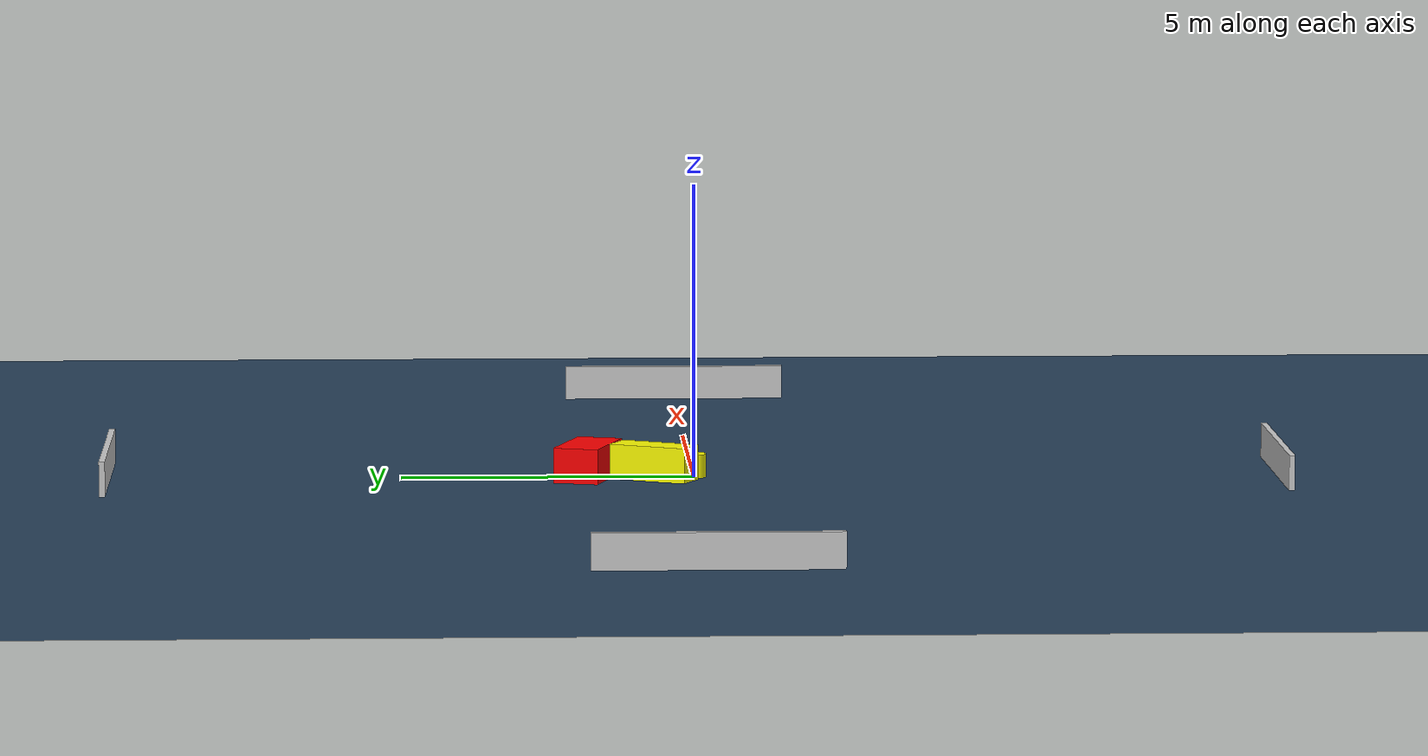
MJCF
<?xml version="1.0" ?>
<mujoco model="generated_environment">
  <option timestep="0.01" integrator="RK4" cone="elliptic"/>
  <default>
    <geom density="1"/>
  </default>
  <asset>
    <texture builtin="gradient" height="3072" name="skybox" rgb1="0.3 0.5 0.7" rgb2="0 0 0" type="skybox" width="512"/>
    <texture builtin="checker" height="300" name="groundplane" rgb1="0.2 0.3 0.4" rgb2="0.1 0.2 0.3" type="2d" width="300"/>
    <material name="groundplane" reflectance="0.2" texrepeat="5 5" texture="groundplane"/>
  </asset>
  <worldbody>
    <light dir="0 0 -1" directional="true" pos="0 0 1.5"/>
    <geom condim="3" friction="0.5 0.005 0.001" material="groundplane" name="floor" pos="0 0 0" size="0 0 0.05" type="plane"/>
    <body name="walls">
      <geom name="wall_1" condim="4" pos="-10.0 0.0 0.3" rgba="0.800000011920929 0.800000011920929 0.800000011920929 1.0" size="0.05 2.0 0.3" type="box"/>
      <geom name="wall_2" condim="4" pos="10.0 0.0 0.3" rgba="0.800000011920929 0.800000011920929 0.800000011920929 1.0" size="0.05 2.0 0.3" type="box"/>
      <geom name="wall_3" condim="4" pos="0.0 -10.0 0.3" rgba="0.800000011920929 0.800000011920929 0.800000011920929 1.0" size="2.0 0.05 0.3" type="box"/>
      <geom name="wall_4" condim="4" pos="0.0 10.0 0.3" rgba="0.800000011920929 0.800000011920929 0.800000011920929 1.0" size="2.0 0.05 0.3" type="box"/>
    </body>
    <body name="robot">
      <joint name="joint_x" type="slide" pos="0 0 0" axis="1 0 0"/>
      <joint name="joint_y" type="slide" pos="0 0 0" axis="0 1 0"/>
      <geom name="robot" type="cylinder" pos="0.0 0.0 0.2" size="0.2 0.2 0.0" mass="5.0" friction="1.0 0.005 0.0001" condim="4" rgba="1.0 1.0 0.0 1.0"/>
    </body>
    <body name="obstacle_1_movable">
      <geom name="obstacle_1_movable" condim="4" pos="-0.266406426154539 0.6967614327572602 0.3" euler="0 0 63.06778463483992" friction="0.0 0.005 0.001" rgba="1.0 1.0 0.0 1.0" size="0.6971737424427582 0.27837942182370873 0.3" type="box" mass="0.1"/>
      <joint type="free"/>
    </body>
    <body name="obstacle_2_static">
      <geom name="obstacle_2_static" condim="4" pos="-0.07666866250735915 1.8206672949794827 0.3" euler="0 0 72.06663411771859" friction="0.0 0.005 0.001" rgba="1.0 0.0 0.0 1.0" size="0.3882832993003824 0.7276819893826791 0.3" type="box"/>
    </body>
  </worldbody>
  <actuator>
    <motor name="actuator_x" joint="joint_x" gear="1" ctrlrange="-1 1"/>
    <motor name="actuator_y" joint="joint_y" gear="1" ctrlrange="-1 1"/>
  </actuator>
</mujoco>
